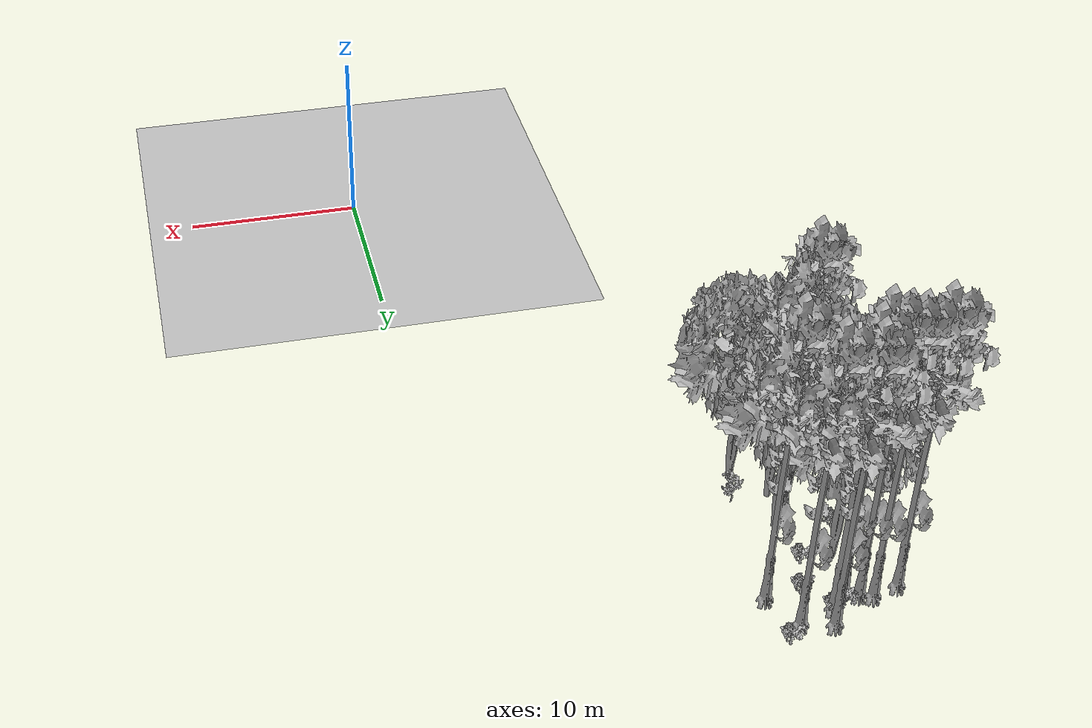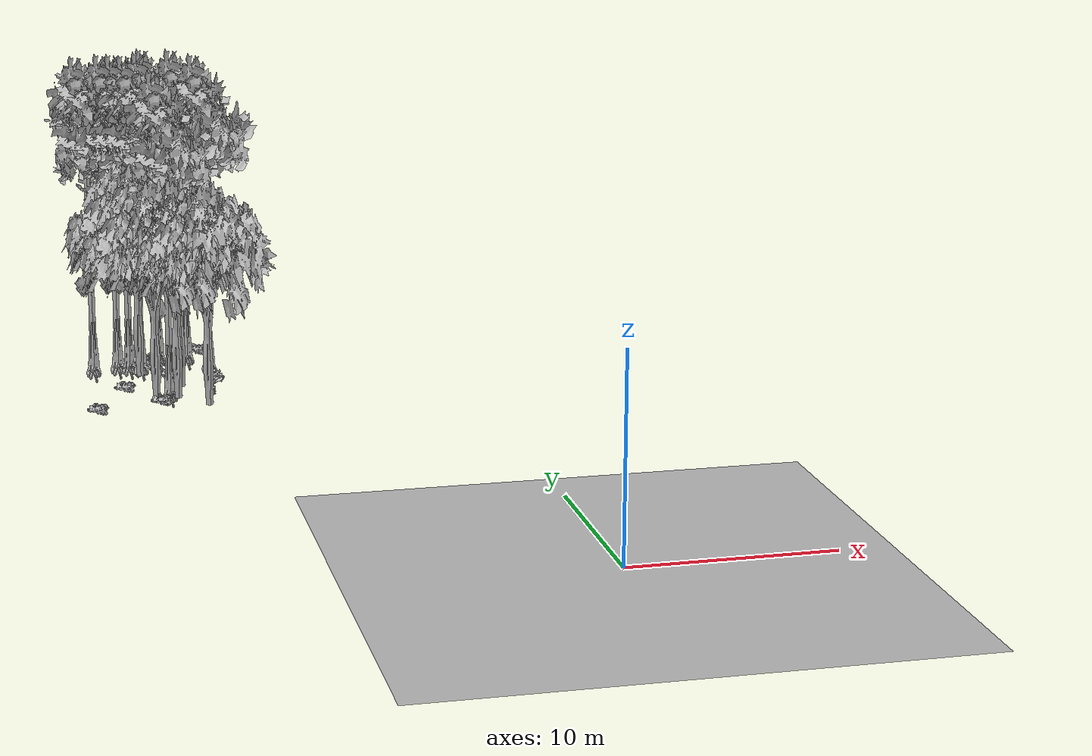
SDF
<sdf version="1.7">
 <world name="default">
  <model name="ground_plane">
   <static>1</static>
   <link name="link">
    <collision name="collision">
     <pose>-50 0 0 0 -0 0</pose>
     <geometry><plane><normal>0 0 1</normal><size>80 80</size></plane></geometry>
     <surface><contact><ode><min_depth>0.01</min_depth><max_vel>0</max_vel></ode></contact></surface>
    </collision>
    <visual name="grass">
     <cast_shadows>0</cast_shadows>
     <geometry>
      <mesh>
       <scale>0.46714285714285714 0.46714285714285714 0.1</scale>
       <uri>file://grass_plane/meshes/grass_plane.dae</uri>
      </mesh>
     </geometry>
    </visual>
   </link>
  </model>
  <model name="Tree 22">
   <static>1</static>
   <pose>-17.42180768954763 37.32817529884164 0 1.57079 -0 0</pose>
   <link name="link">
    <collision name="collision">
     <geometry><mesh><scale>3.5 5 3.5</scale><uri>model://tree_9/meshes/tree_9.obj</uri></mesh></geometry>
    </collision>
    <visual name="visual">
     <geometry><mesh><scale>3.5 5 3.5</scale><uri>model://tree_9/meshes/tree_9.obj</uri></mesh></geometry>
    </visual>
   </link>
  </model>
  <model name="Tree 44">
   <static>1</static>
   <pose>-20.05782696839381 37.58268482844305 0 1.57079 -0 0</pose>
   <link name="link">
    <collision name="collision">
     <geometry><mesh><scale>3.5 5 3.5</scale><uri>model://tree_9/meshes/tree_9.obj</uri></mesh></geometry>
    </collision>
    <visual name="visual">
     <geometry><mesh><scale>3.5 5 3.5</scale><uri>model://tree_9/meshes/tree_9.obj</uri></mesh></geometry>
    </visual>
   </link>
  </model>
  <model name="Tree 76">
   <static>1</static>
   <pose>-14.71251636920066 28.72018579472629 0 1.57079 -0 0</pose>
   <link name="link">
    <collision name="collision">
     <geometry><mesh><scale>3.5 5 3.5</scale><uri>model://tree_2/meshes/tree_2.obj</uri></mesh></geometry>
    </collision>
    <visual name="visual">
     <geometry><mesh><scale>3.5 5 3.5</scale><uri>model://tree_2/meshes/tree_2.obj</uri></mesh></geometry>
    </visual>
   </link>
  </model>
  <model name="Tree 179">
   <static>1</static>
   <pose>-17.368381013292957 30.20233286277451 0 1.57079 -0 0</pose>
   <link name="link">
    <collision name="collision">
     <geometry><mesh><scale>3.5 5 3.5</scale><uri>model://tree_2/meshes/tree_2.obj</uri></mesh></geometry>
    </collision>
    <visual name="visual">
     <geometry><mesh><scale>3.5 5 3.5</scale><uri>model://tree_2/meshes/tree_2.obj</uri></mesh></geometry>
    </visual>
   </link>
  </model>
  <model name="Tree 196">
   <static>1</static>
   <pose>-16.19033536412017 30.370767229246752 0 1.57079 -0 0</pose>
   <link name="link">
    <collision name="collision">
     <geometry><mesh><scale>3.5 5 3.5</scale><uri>model://tree_2/meshes/tree_2.obj</uri></mesh></geometry>
    </collision>
    <visual name="visual">
     <geometry><mesh><scale>3.5 5 3.5</scale><uri>model://tree_2/meshes/tree_2.obj</uri></mesh></geometry>
    </visual>
   </link>
  </model>
  <model name="Tree 292">
   <static>1</static>
   <pose>-16.400734811071207 31.758389732772144 0 1.57079 -0 0</pose>
   <link name="link">
    <collision name="collision">
     <geometry><mesh><scale>3.5 5 3.5</scale><uri>model://tree_9/meshes/tree_9.obj</uri></mesh></geometry>
    </collision>
    <visual name="visual">
     <geometry><mesh><scale>3.5 5 3.5</scale><uri>model://tree_9/meshes/tree_9.obj</uri></mesh></geometry>
    </visual>
   </link>
  </model>
  <model name="Tree 306">
   <static>1</static>
   <pose>-16.528623409115383 38.31771306399028 0 1.57079 -0 0</pose>
   <link name="link">
    <collision name="collision">
     <geometry><mesh><scale>3.5 5 3.5</scale><uri>model://tree_9/meshes/tree_9.obj</uri></mesh></geometry>
    </collision>
    <visual name="visual">
     <geometry><mesh><scale>3.5 5 3.5</scale><uri>model://tree_9/meshes/tree_9.obj</uri></mesh></geometry>
    </visual>
   </link>
  </model>
  <model name="Tree 371">
   <static>1</static>
   <pose>-13.613310646564422 37.038760579141666 0 1.57079 -0 0</pose>
   <link name="link">
    <collision name="collision">
     <geometry><mesh><scale>3.5 5 3.5</scale><uri>model://tree_9/meshes/tree_9.obj</uri></mesh></geometry>
    </collision>
    <visual name="visual">
     <geometry><mesh><scale>3.5 5 3.5</scale><uri>model://tree_9/meshes/tree_9.obj</uri></mesh></geometry>
    </visual>
   </link>
  </model>
  <model name="Tree 408">
   <static>1</static>
   <pose>-16.22146462043501 39.343768702837366 0 1.57079 -0 0</pose>
   <link name="link">
    <collision name="collision">
     <geometry><mesh><scale>3.5 5 3.5</scale><uri>model://tree_9/meshes/tree_9.obj</uri></mesh></geometry>
    </collision>
    <visual name="visual">
     <geometry><mesh><scale>3.5 5 3.5</scale><uri>model://tree_9/meshes/tree_9.obj</uri></mesh></geometry>
    </visual>
   </link>
  </model>
  <model name="Tree 415">
   <static>1</static>
   <pose>-15.779351938044087 32.537469534264744 0 1.57079 -0 0</pose>
   <link name="link">
    <collision name="collision">
     <geometry><mesh><scale>3.5 5 3.5</scale><uri>model://tree_2/meshes/tree_2.obj</uri></mesh></geometry>
    </collision>
    <visual name="visual">
     <geometry><mesh><scale>3.5 5 3.5</scale><uri>model://tree_2/meshes/tree_2.obj</uri></mesh></geometry>
    </visual>
   </link>
  </model>
  <model name="Tree 480">
   <static>1</static>
   <pose>-14.653299191800048 38.96206916431069 0 1.57079 -0 0</pose>
   <link name="link">
    <collision name="collision">
     <geometry><mesh><scale>3.5 5 3.5</scale><uri>model://tree_9/meshes/tree_9.obj</uri></mesh></geometry>
    </collision>
    <visual name="visual">
     <geometry><mesh><scale>3.5 5 3.5</scale><uri>model://tree_9/meshes/tree_9.obj</uri></mesh></geometry>
    </visual>
   </link>
  </model>
  <model name="Tree 557">
   <static>1</static>
   <pose>-18.67055020902043 37.980317798343776 0 1.57079 -0 0</pose>
   <link name="link">
    <collision name="collision">
     <geometry><mesh><scale>3.5 5 3.5</scale><uri>model://tree_9/meshes/tree_9.obj</uri></mesh></geometry>
    </collision>
    <visual name="visual">
     <geometry><mesh><scale>3.5 5 3.5</scale><uri>model://tree_9/meshes/tree_9.obj</uri></mesh></geometry>
    </visual>
   </link>
  </model>
  <model name="Tree 569">
   <static>1</static>
   <pose>-18.04155944647237 37.755413839968895 0 1.57079 -0 0</pose>
   <link name="link">
    <collision name="collision">
     <geometry><mesh><scale>3.5 5 3.5</scale><uri>model://tree_9/meshes/tree_9.obj</uri></mesh></geometry>
    </collision>
    <visual name="visual">
     <geometry><mesh><scale>3.5 5 3.5</scale><uri>model://tree_9/meshes/tree_9.obj</uri></mesh></geometry>
    </visual>
   </link>
  </model>
  <model name="Tree 586">
   <static>1</static>
   <pose>-17.779995786914746 35.124603642235726 0 1.57079 -0 0</pose>
   <link name="link">
    <collision name="collision">
     <geometry><mesh><scale>3.5 5 3.5</scale><uri>model://tree_2/meshes/tree_2.obj</uri></mesh></geometry>
    </collision>
    <visual name="visual">
     <geometry><mesh><scale>3.5 5 3.5</scale><uri>model://tree_2/meshes/tree_2.obj</uri></mesh></geometry>
    </visual>
   </link>
  </model>
  <model name="Bush 8">
   <static>1</static>
   <pose>-14.113557208177976 30.525283022102784 0 1.57079 -0 0</pose>
   <link name="link">
    <collision name="collision">
     <geometry><mesh><scale>2 2 2</scale><uri>model://bush_5/meshes/bush_5.obj</uri></mesh></geometry>
     <surface><contact><collide_without_contact>false</collide_without_contact></contact></surface>
    </collision>
    <visual name="visual">
     <geometry><mesh><scale>2 2 2</scale><uri>model://bush_5/meshes/bush_5.obj</uri></mesh></geometry>
    </visual>
   </link>
  </model>
  <model name="Bush 60">
   <static>1</static>
   <pose>-16.342501699329542 34.69353234869092 0 1.57079 -0 0</pose>
   <link name="link">
    <collision name="collision">
     <geometry><mesh><scale>2 2 2</scale><uri>model://bush_2/meshes/bush_2.obj</uri></mesh></geometry>
     <surface><contact><collide_without_contact>false</collide_without_contact></contact></surface>
    </collision>
    <visual name="visual">
     <geometry><mesh><scale>2 2 2</scale><uri>model://bush_2/meshes/bush_2.obj</uri></mesh></geometry>
    </visual>
   </link>
  </model>
  <model name="Bush 83">
   <static>1</static>
   <pose>-15.632162231861347 36.60407775249753 0 1.57079 -0 0</pose>
   <link name="link">
    <collision name="collision">
     <geometry><mesh><scale>2 2 2</scale><uri>model://bush_2/meshes/bush_2.obj</uri></mesh></geometry>
     <surface><contact><collide_without_contact>false</collide_without_contact></contact></surface>
    </collision>
    <visual name="visual">
     <geometry><mesh><scale>2 2 2</scale><uri>model://bush_2/meshes/bush_2.obj</uri></mesh></geometry>
    </visual>
   </link>
  </model>
  <model name="Bush 168">
   <static>1</static>
   <pose>-14.039299124678372 39.53980584469559 0 1.57079 -0 0</pose>
   <link name="link">
    <collision name="collision">
     <geometry><mesh><scale>2 2 2</scale><uri>model://bush_2/meshes/bush_2.obj</uri></mesh></geometry>
     <surface><contact><collide_without_contact>false</collide_without_contact></contact></surface>
    </collision>
    <visual name="visual">
     <geometry><mesh><scale>2 2 2</scale><uri>model://bush_2/meshes/bush_2.obj</uri></mesh></geometry>
    </visual>
   </link>
  </model>
  <model name="Bush 466">
   <static>1</static>
   <pose>-17.38411186577153 37.751674077738244 0 1.57079 -0 0</pose>
   <link name="link">
    <collision name="collision">
     <geometry><mesh><scale>2 2 2</scale><uri>model://bush_2/meshes/bush_2.obj</uri></mesh></geometry>
     <surface><contact><collide_without_contact>false</collide_without_contact></contact></surface>
    </collision>
    <visual name="visual">
     <geometry><mesh><scale>2 2 2</scale><uri>model://bush_2/meshes/bush_2.obj</uri></mesh></geometry>
    </visual>
   </link>
  </model>
  <model name="Bush 471">
   <static>1</static>
   <pose>-17.066572877518013 29.779084285540435 0 1.57079 -0 0</pose>
   <link name="link">
    <collision name="collision">
     <geometry><mesh><scale>2 2 2</scale><uri>model://bush_2/meshes/bush_2.obj</uri></mesh></geometry>
     <surface><contact><collide_without_contact>false</collide_without_contact></contact></surface>
    </collision>
    <visual name="visual">
     <geometry><mesh><scale>2 2 2</scale><uri>model://bush_2/meshes/bush_2.obj</uri></mesh></geometry>
    </visual>
   </link>
  </model>
  <model name="Bush 560">
   <static>1</static>
   <pose>-16.662397575935827 38.1321159080624 0 1.57079 -0 0</pose>
   <link name="link">
    <collision name="collision">
     <geometry><mesh><scale>2 2 2</scale><uri>model://bush_2/meshes/bush_2.obj</uri></mesh></geometry>
     <surface><contact><collide_without_contact>false</collide_without_contact></contact></surface>
    </collision>
    <visual name="visual">
     <geometry><mesh><scale>2 2 2</scale><uri>model://bush_2/meshes/bush_2.obj</uri></mesh></geometry>
    </visual>
   </link>
  </model>
  <model name="Bush 564">
   <static>1</static>
   <pose>-20.53119985228486 28.728363154650538 0 1.57079 -0 0</pose>
   <link name="link">
    <collision name="collision">
     <geometry><mesh><scale>2 2 2</scale><uri>model://bush_2/meshes/bush_2.obj</uri></mesh></geometry>
     <surface><contact><collide_without_contact>false</collide_without_contact></contact></surface>
    </collision>
    <visual name="visual">
     <geometry><mesh><scale>2 2 2</scale><uri>model://bush_2/meshes/bush_2.obj</uri></mesh></geometry>
    </visual>
   </link>
  </model>
  <model name="Bush 572">
   <static>1</static>
   <pose>-18.74676358343286 32.62536367430346 0 1.57079 -0 0</pose>
   <link name="link">
    <collision name="collision">
     <geometry><mesh><scale>2 2 2</scale><uri>model://bush_2/meshes/bush_2.obj</uri></mesh></geometry>
     <surface><contact><collide_without_contact>false</collide_without_contact></contact></surface>
    </collision>
    <visual name="visual">
     <geometry><mesh><scale>2 2 2</scale><uri>model://bush_2/meshes/bush_2.obj</uri></mesh></geometry>
    </visual>
   </link>
  </model>
 </world>
</sdf>
